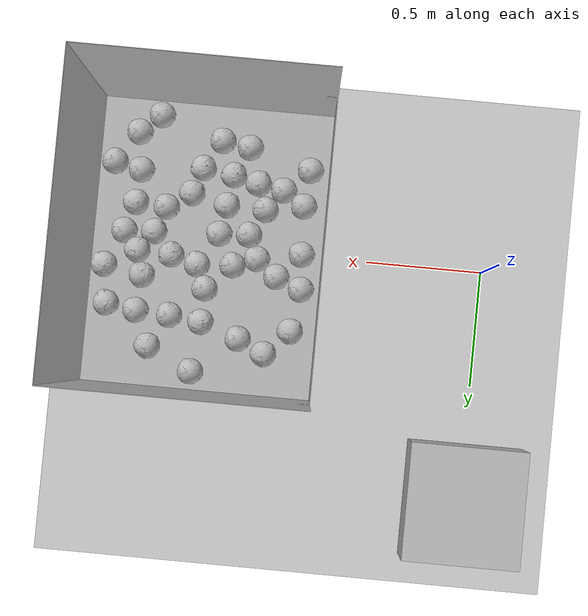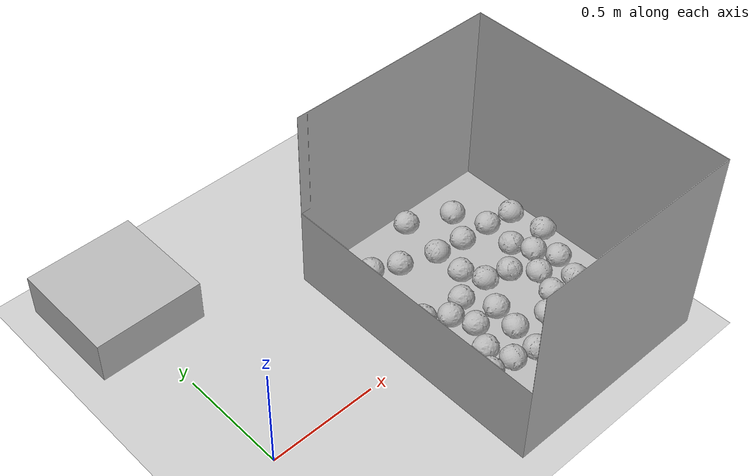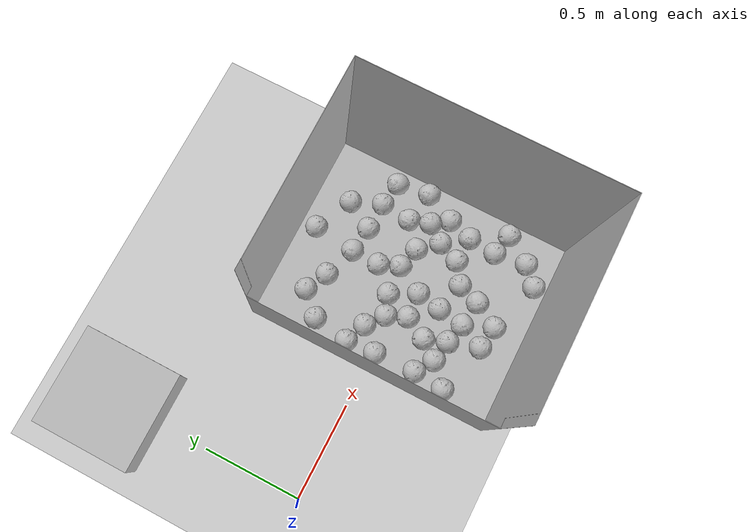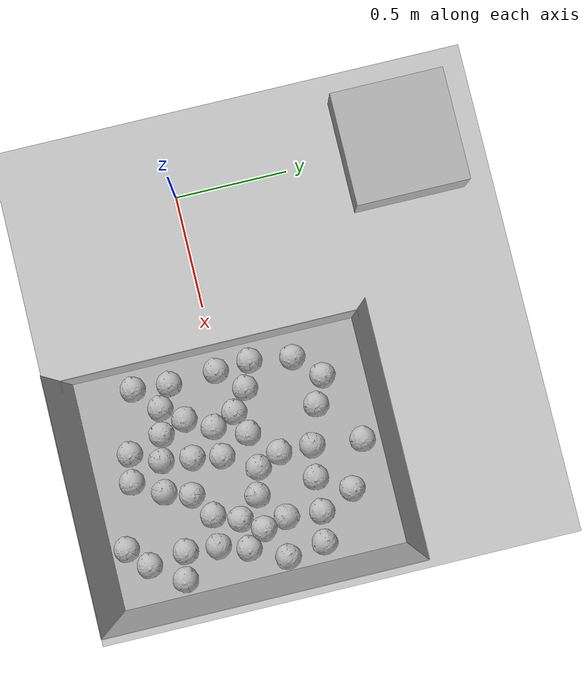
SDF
<sdf version="1.6">
 <world name="default">
  <model name="ground_plane">
   <static>1</static>
   <link name="link">
    <collision name="collision">
     <geometry><plane><normal>0 0 1</normal><size>100 100</size></plane></geometry>
     <surface>
      <contact><collide_bitmask>65535</collide_bitmask></contact>
      <friction><ode><mu>100</mu><mu2>50</mu2></ode></friction>
     </surface>
    </collision>
    <visual name="visual">
     <cast_shadows>0</cast_shadows>
     <geometry><plane><normal>0 0 1</normal><size>100 100</size></plane></geometry>
     <material>
      <script><uri>file://media/materials/scripts/gazebo.material</uri><name>Gazebo/Grey</name></script>
     </material>
    </visual>
   </link>
  </model>
  <light name="sun" type="directional">
   <pose>0 0 10 0 -0 0</pose>
   <diffuse>0.8 0.8 0.8 1</diffuse>
   <specular>0.2 0.2 0.2 1</specular>
   <attenuation>
    <range>1000</range>
    <constant>0.9</constant>
    <linear>0.01</linear>
    <quadratic>0.001</quadratic>
   </attenuation>
   <direction>-0.5 0.1 -0.9</direction>
  </light>
  <model name="mytable">
   <static>1</static>
   <link name="link">
    <inertial>
     <mass>100</mass>
     <inertia><ixx>0.083</ixx><ixy>0</ixy><ixz>0</ixz><iyy>0.083</iyy><iyz>0</iyz><izz>0.083</izz></inertia>
    </inertial>
    <collision name="collision"><geometry><box><size>0.5 0.5 0.2</size></box></geometry></collision>
    <visual name="visual"><geometry><box><size>0.5 0.5 0.2</size></box></geometry></visual>
   </link>
   <pose>0 1 0.1 0 -0 0</pose>
  </model>
  <model name="container">
   <static>1</static>
   <link name="link">
    <inertial>
     <mass>100</mass>
     <inertia><ixx>1</ixx><ixy>0</ixy><ixz>0</ixz><iyy>1</iyy><iyz>0</iyz><izz>1</izz></inertia>
    </inertial>
    <collision name="collision">
     <geometry>
      <mesh>
       <scale>0.001 0.001 0.001</scale>
       <uri>model://big_container_open/big_container_open_meshlab.dae</uri>
      </mesh>
     </geometry>
     <surface>
      <friction><ode><mu>0.6</mu><mu2>0.6</mu2></ode></friction>
      <contact><ode><max_vel>0.1</max_vel><min_depth>0.0001</min_depth></ode></contact>
     </surface>
    </collision>
    <visual name="visual">
     <geometry>
      <mesh>
       <scale>0.001 0.001 0.001</scale>
       <uri>model://big_container_open/big_container_open_meshlab.dae</uri>
      </mesh>
     </geometry>
    </visual>
   </link>
   <pose>1.2 0 0 0 0 -1.57</pose>
  </model>
  <gravity>0 0 -9.8</gravity>
  <magnetic_field>6e-06 2.3e-05 -4.2e-05</magnetic_field>
  <atmosphere type="adiabatic"/>
  <physics name="default_physics" default="0" type="ode">
   <max_step_size>0.001</max_step_size>
   <real_time_factor>1</real_time_factor>
   <real_time_update_rate>1000</real_time_update_rate>
  </physics>
  <scene><ambient>0.4 0.4 0.4 1</ambient><background>0.7 0.7 0.7 1</background><shadows>1</shadows></scene>
  <audio><device>default</device></audio>
  <spherical_coordinates>
   <surface_model>EARTH_WGS84</surface_model>
   <latitude_deg>0</latitude_deg>
   <longitude_deg>0</longitude_deg>
   <elevation>0</elevation>
   <heading_deg>0</heading_deg>
  </spherical_coordinates>
  <model name="cabbage_1">
   <link name="link">
    <inertial>
     <mass>1</mass>
     <inertia><ixx>0.001</ixx><ixy>0</ixy><ixz>0</ixz><iyy>0.001</iyy><iyz>0</iyz><izz>0.001</izz></inertia>
    </inertial>
    <collision name="collision">
     <geometry>
      <mesh><scale>0.001 0.001 0.001</scale><uri>model://cabbage/cabbage_single.dae</uri></mesh>
     </geometry>
     <surface>
      <friction><ode><mu>0.8</mu><mu2>0.8</mu2></ode></friction>
      <contact><ode><max_vel>0.1</max_vel><min_depth>0.0001</min_depth></ode></contact>
     </surface>
    </collision>
    <visual name="visual">
     <geometry>
      <mesh><scale>0.001 0.001 0.001</scale><uri>model://cabbage/cabbage_single.dae</uri></mesh>
     </geometry>
     <material><script><uri>model://cabbage/texture.material</uri><name>CabbageTexture</name></script></material>
    </visual>
   </link>
   <pose>1.56598 -0.039157 0.004035 1.57626 0.009022 -0.760824</pose>
  </model>
  <model name="cabbage_4">
   <link name="link">
    <inertial>
     <mass>1</mass>
     <inertia><ixx>0.001</ixx><ixy>0</ixy><ixz>0</ixz><iyy>0.001</iyy><iyz>0</iyz><izz>0.001</izz></inertia>
    </inertial>
    <collision name="collision">
     <geometry>
      <mesh><scale>0.001 0.001 0.001</scale><uri>model://cabbage/cabbage_single.dae</uri></mesh>
     </geometry>
     <surface>
      <friction><ode><mu>0.8</mu><mu2>0.8</mu2></ode></friction>
      <contact><ode><max_vel>0.1</max_vel><min_depth>0.0001</min_depth></ode></contact>
     </surface>
    </collision>
    <visual name="visual">
     <geometry>
      <mesh><scale>0.001 0.001 0.001</scale><uri>model://cabbage/cabbage_single.dae</uri></mesh>
     </geometry>
     <material><script><uri>model://cabbage/texture.material</uri><name>CabbageTexture</name></script></material>
    </visual>
   </link>
   <pose>1.10936 -0.324463 0.004035 1.57622 0.008772 2.51694</pose>
  </model>
  <model name="cabbage_6">
   <link name="link">
    <inertial>
     <mass>1</mass>
     <inertia><ixx>0.001</ixx><ixy>0</ixy><ixz>0</ixz><iyy>0.001</iyy><iyz>0</iyz><izz>0.001</izz></inertia>
    </inertial>
    <collision name="collision">
     <geometry>
      <mesh><scale>0.001 0.001 0.001</scale><uri>model://cabbage/cabbage_single.dae</uri></mesh>
     </geometry>
     <surface>
      <friction><ode><mu>0.8</mu><mu2>0.8</mu2></ode></friction>
      <contact><ode><max_vel>0.1</max_vel><min_depth>0.0001</min_depth></ode></contact>
     </surface>
    </collision>
    <visual name="visual">
     <geometry>
      <mesh><scale>0.001 0.001 0.001</scale><uri>model://cabbage/cabbage_single.dae</uri></mesh>
     </geometry>
     <material><script><uri>model://cabbage/texture.material</uri><name>CabbageTexture</name></script></material>
    </visual>
   </link>
   <pose>1.43353 -0.045665 0.00405 1.57882 0.008287 0.230389</pose>
  </model>
  <model name="cabbage_7">
   <link name="link">
    <inertial>
     <mass>1</mass>
     <inertia><ixx>0.001</ixx><ixy>0</ixy><ixz>0</ixz><iyy>0.001</iyy><iyz>0</iyz><izz>0.001</izz></inertia>
    </inertial>
    <collision name="collision">
     <geometry>
      <mesh><scale>0.001 0.001 0.001</scale><uri>model://cabbage/cabbage_single.dae</uri></mesh>
     </geometry>
     <surface>
      <friction><ode><mu>0.8</mu><mu2>0.8</mu2></ode></friction>
      <contact><ode><max_vel>0.1</max_vel><min_depth>0.0001</min_depth></ode></contact>
     </surface>
    </collision>
    <visual name="visual">
     <geometry>
      <mesh><scale>0.001 0.001 0.001</scale><uri>model://cabbage/cabbage_single.dae</uri></mesh>
     </geometry>
     <material><script><uri>model://cabbage/texture.material</uri><name>CabbageTexture</name></script></material>
    </visual>
   </link>
   <pose>1.63633 0.114074 0.004033 1.57577 0.00882 1.50983</pose>
  </model>
  <model name="cabbage_8">
   <link name="link">
    <inertial>
     <mass>1</mass>
     <inertia><ixx>0.001</ixx><ixy>0</ixy><ixz>0</ixz><iyy>0.001</iyy><iyz>0</iyz><izz>0.001</izz></inertia>
    </inertial>
    <collision name="collision">
     <geometry>
      <mesh><scale>0.001 0.001 0.001</scale><uri>model://cabbage/cabbage_single.dae</uri></mesh>
     </geometry>
     <surface>
      <friction><ode><mu>0.8</mu><mu2>0.8</mu2></ode></friction>
      <contact><ode><max_vel>0.1</max_vel><min_depth>0.0001</min_depth></ode></contact>
     </surface>
    </collision>
    <visual name="visual">
     <geometry>
      <mesh><scale>0.001 0.001 0.001</scale><uri>model://cabbage/cabbage_single.dae</uri></mesh>
     </geometry>
     <material><script><uri>model://cabbage/texture.material</uri><name>CabbageTexture</name></script></material>
    </visual>
   </link>
   <pose>1.35051 0.044163 0.004036 1.57596 0.008707 3.00387</pose>
  </model>
  <model name="cabbage_9">
   <link name="link">
    <inertial>
     <mass>1</mass>
     <inertia><ixx>0.001</ixx><ixy>0</ixy><ixz>0</ixz><iyy>0.001</iyy><iyz>0</iyz><izz>0.001</izz></inertia>
    </inertial>
    <collision name="collision">
     <geometry>
      <mesh><scale>0.001 0.001 0.001</scale><uri>model://cabbage/cabbage_single.dae</uri></mesh>
     </geometry>
     <surface>
      <friction><ode><mu>0.8</mu><mu2>0.8</mu2></ode></friction>
      <contact><ode><max_vel>0.1</max_vel><min_depth>0.0001</min_depth></ode></contact>
     </surface>
    </collision>
    <visual name="visual">
     <geometry>
      <mesh><scale>0.001 0.001 0.001</scale><uri>model://cabbage/cabbage_single.dae</uri></mesh>
     </geometry>
     <material><script><uri>model://cabbage/texture.material</uri><name>CabbageTexture</name></script></material>
    </visual>
   </link>
   <pose>1.63335 -0.336733 0.004028 1.57637 0.008581 -1.38781</pose>
  </model>
  <model name="cabbage_10">
   <link name="link">
    <inertial>
     <mass>1</mass>
     <inertia><ixx>0.001</ixx><ixy>0</ixy><ixz>0</ixz><iyy>0.001</iyy><iyz>0</iyz><izz>0.001</izz></inertia>
    </inertial>
    <collision name="collision">
     <geometry>
      <mesh><scale>0.001 0.001 0.001</scale><uri>model://cabbage/cabbage_single.dae</uri></mesh>
     </geometry>
     <surface>
      <friction><ode><mu>0.8</mu><mu2>0.8</mu2></ode></friction>
      <contact><ode><max_vel>0.1</max_vel><min_depth>0.0001</min_depth></ode></contact>
     </surface>
    </collision>
    <visual name="visual">
     <geometry>
      <mesh><scale>0.001 0.001 0.001</scale><uri>model://cabbage/cabbage_single.dae</uri></mesh>
     </geometry>
     <material><script><uri>model://cabbage/texture.material</uri><name>CabbageTexture</name></script></material>
    </visual>
   </link>
   <pose>1.24455 -0.343524 0.004036 1.57603 0.008738 2.66101</pose>
  </model>
  <model name="cabbage_11">
   <link name="link">
    <inertial>
     <mass>1</mass>
     <inertia><ixx>0.001</ixx><ixy>0</ixy><ixz>0</ixz><iyy>0.001</iyy><iyz>0</iyz><izz>0.001</izz></inertia>
    </inertial>
    <collision name="collision">
     <geometry>
      <mesh><scale>0.001 0.001 0.001</scale><uri>model://cabbage/cabbage_single.dae</uri></mesh>
     </geometry>
     <surface>
      <friction><ode><mu>0.8</mu><mu2>0.8</mu2></ode></friction>
      <contact><ode><max_vel>0.1</max_vel><min_depth>0.0001</min_depth></ode></contact>
     </surface>
    </collision>
    <visual name="visual">
     <geometry>
      <mesh><scale>0.001 0.001 0.001</scale><uri>model://cabbage/cabbage_single.dae</uri></mesh>
     </geometry>
     <material><script><uri>model://cabbage/texture.material</uri><name>CabbageTexture</name></script></material>
    </visual>
   </link>
   <pose>1.47148 0.144125 0.004074 1.58325 0.006261 -2.62925</pose>
  </model>
  <model name="cabbage_12">
   <link name="link">
    <inertial>
     <mass>1</mass>
     <inertia><ixx>0.001</ixx><ixy>0</ixy><ixz>0</ixz><iyy>0.001</iyy><iyz>0</iyz><izz>0.001</izz></inertia>
    </inertial>
    <collision name="collision">
     <geometry>
      <mesh><scale>0.001 0.001 0.001</scale><uri>model://cabbage/cabbage_single.dae</uri></mesh>
     </geometry>
     <surface>
      <friction><ode><mu>0.8</mu><mu2>0.8</mu2></ode></friction>
      <contact><ode><max_vel>0.1</max_vel><min_depth>0.0001</min_depth></ode></contact>
     </surface>
    </collision>
    <visual name="visual">
     <geometry>
      <mesh><scale>0.001 0.001 0.001</scale><uri>model://cabbage/cabbage_single.dae</uri></mesh>
     </geometry>
     <material><script><uri>model://cabbage/texture.material</uri><name>CabbageTexture</name></script></material>
    </visual>
   </link>
   <pose>1.61246 0.281644 0.003963 1.56744 0.009088 1.15197</pose>
  </model>
  <model name="cabbage_13">
   <link name="link">
    <inertial>
     <mass>1</mass>
     <inertia><ixx>0.001</ixx><ixy>0</ixy><ixz>0</ixz><iyy>0.001</iyy><iyz>0</iyz><izz>0.001</izz></inertia>
    </inertial>
    <collision name="collision">
     <geometry>
      <mesh><scale>0.001 0.001 0.001</scale><uri>model://cabbage/cabbage_single.dae</uri></mesh>
     </geometry>
     <surface>
      <friction><ode><mu>0.8</mu><mu2>0.8</mu2></ode></friction>
      <contact><ode><max_vel>0.1</max_vel><min_depth>0.0001</min_depth></ode></contact>
     </surface>
    </collision>
    <visual name="visual">
     <geometry>
      <mesh><scale>0.001 0.001 0.001</scale><uri>model://cabbage/cabbage_single.dae</uri></mesh>
     </geometry>
     <material><script><uri>model://cabbage/texture.material</uri><name>CabbageTexture</name></script></material>
    </visual>
   </link>
   <pose>1.19484 0.326349 0.004035 1.57594 0.008635 1.83233</pose>
  </model>
  <model name="cabbage_14">
   <link name="link">
    <inertial>
     <mass>1</mass>
     <inertia><ixx>0.001</ixx><ixy>0</ixy><ixz>0</ixz><iyy>0.001</iyy><iyz>0</iyz><izz>0.001</izz></inertia>
    </inertial>
    <collision name="collision">
     <geometry>
      <mesh><scale>0.001 0.001 0.001</scale><uri>model://cabbage/cabbage_single.dae</uri></mesh>
     </geometry>
     <surface>
      <friction><ode><mu>0.8</mu><mu2>0.8</mu2></ode></friction>
      <contact><ode><max_vel>0.1</max_vel><min_depth>0.0001</min_depth></ode></contact>
     </surface>
    </collision>
    <visual name="visual">
     <geometry>
      <mesh><scale>0.001 0.001 0.001</scale><uri>model://cabbage/cabbage_single.dae</uri></mesh>
     </geometry>
     <material><script><uri>model://cabbage/texture.material</uri><name>CabbageTexture</name></script></material>
    </visual>
   </link>
   <pose>1.52296 -0.168109 0.00403 1.57524 0.00862 1.95144</pose>
  </model>
  <model name="cabbage_15">
   <link name="link">
    <inertial>
     <mass>1</mass>
     <inertia><ixx>0.001</ixx><ixy>0</ixy><ixz>0</ixz><iyy>0.001</iyy><iyz>0</iyz><izz>0.001</izz></inertia>
    </inertial>
    <collision name="collision">
     <geometry>
      <mesh><scale>0.001 0.001 0.001</scale><uri>model://cabbage/cabbage_single.dae</uri></mesh>
     </geometry>
     <surface>
      <friction><ode><mu>0.8</mu><mu2>0.8</mu2></ode></friction>
      <contact><ode><max_vel>0.1</max_vel><min_depth>0.0001</min_depth></ode></contact>
     </surface>
    </collision>
    <visual name="visual">
     <geometry>
      <mesh><scale>0.001 0.001 0.001</scale><uri>model://cabbage/cabbage_single.dae</uri></mesh>
     </geometry>
     <material><script><uri>model://cabbage/texture.material</uri><name>CabbageTexture</name></script></material>
    </visual>
   </link>
   <pose>1.28518 -0.225932 0.004035 1.57615 0.008746 -0.102645</pose>
  </model>
  <model name="cabbage_16">
   <link name="link">
    <inertial>
     <mass>1</mass>
     <inertia><ixx>0.001</ixx><ixy>0</ixy><ixz>0</ixz><iyy>0.001</iyy><iyz>0</iyz><izz>0.001</izz></inertia>
    </inertial>
    <collision name="collision">
     <geometry>
      <mesh><scale>0.001 0.001 0.001</scale><uri>model://cabbage/cabbage_single.dae</uri></mesh>
     </geometry>
     <surface>
      <friction><ode><mu>0.8</mu><mu2>0.8</mu2></ode></friction>
      <contact><ode><max_vel>0.1</max_vel><min_depth>0.0001</min_depth></ode></contact>
     </surface>
    </collision>
    <visual name="visual">
     <geometry>
      <mesh><scale>0.001 0.001 0.001</scale><uri>model://cabbage/cabbage_single.dae</uri></mesh>
     </geometry>
     <material><script><uri>model://cabbage/texture.material</uri><name>CabbageTexture</name></script></material>
    </visual>
   </link>
   <pose>1.49351 0.047967 0.028174 1.67434 0.064266 -0.016665</pose>
  </model>
  <model name="cabbage_18">
   <link name="link">
    <inertial>
     <mass>1</mass>
     <inertia><ixx>0.001</ixx><ixy>0</ixy><ixz>0</ixz><iyy>0.001</iyy><iyz>0</iyz><izz>0.001</izz></inertia>
    </inertial>
    <collision name="collision">
     <geometry>
      <mesh><scale>0.001 0.001 0.001</scale><uri>model://cabbage/cabbage_single.dae</uri></mesh>
     </geometry>
     <surface>
      <friction><ode><mu>0.8</mu><mu2>0.8</mu2></ode></friction>
      <contact><ode><max_vel>0.1</max_vel><min_depth>0.0001</min_depth></ode></contact>
     </surface>
    </collision>
    <visual name="visual">
     <geometry>
      <mesh><scale>0.001 0.001 0.001</scale><uri>model://cabbage/cabbage_single.dae</uri></mesh>
     </geometry>
     <material><script><uri>model://cabbage/texture.material</uri><name>CabbageTexture</name></script></material>
    </visual>
   </link>
   <pose>1.19476 0.180337 0.004167 1.55903 -0.009959 -1.32707</pose>
  </model>
  <model name="cabbage_2_clone">
   <link name="link">
    <inertial>
     <mass>1</mass>
     <inertia><ixx>0.001</ixx><ixy>0</ixy><ixz>0</ixz><iyy>0.001</iyy><iyz>0</iyz><izz>0.001</izz></inertia>
    </inertial>
    <collision name="collision">
     <geometry>
      <mesh><scale>0.001 0.001 0.001</scale><uri>model://cabbage/cabbage_single.dae</uri></mesh>
     </geometry>
     <surface>
      <friction><ode><mu>0.8</mu><mu2>0.8</mu2></ode></friction>
      <contact><ode><max_vel>0.1</max_vel><min_depth>0.0001</min_depth></ode></contact>
     </surface>
    </collision>
    <visual name="visual">
     <geometry>
      <mesh><scale>0.001 0.001 0.001</scale><uri>model://cabbage/cabbage_single.dae</uri></mesh>
     </geometry>
     <material><script><uri>model://cabbage/texture.material</uri><name>CabbageTexture</name></script></material>
    </visual>
   </link>
   <pose>1.02372 -0.068914 0.004028 1.57675 0.009024 -1.2972</pose>
  </model>
  <model name="cabbage_2_clone_0">
   <link name="link">
    <inertial>
     <mass>1</mass>
     <inertia><ixx>0.001</ixx><ixy>0</ixy><ixz>0</ixz><iyy>0.001</iyy><iyz>0</iyz><izz>0.001</izz></inertia>
    </inertial>
    <collision name="collision">
     <geometry>
      <mesh><scale>0.001 0.001 0.001</scale><uri>model://cabbage/cabbage_single.dae</uri></mesh>
     </geometry>
     <surface>
      <friction><ode><mu>0.8</mu><mu2>0.8</mu2></ode></friction>
      <contact><ode><max_vel>0.1</max_vel><min_depth>0.0001</min_depth></ode></contact>
     </surface>
    </collision>
    <visual name="visual">
     <geometry>
      <mesh><scale>0.001 0.001 0.001</scale><uri>model://cabbage/cabbage_single.dae</uri></mesh>
     </geometry>
     <material><script><uri>model://cabbage/texture.material</uri><name>CabbageTexture</name></script></material>
    </visual>
   </link>
   <pose>1.3373 0.310488 0.004036 1.57615 0.008677 -1.08155</pose>
  </model>
  <model name="cabbage_3_clone">
   <link name="link">
    <inertial>
     <mass>1</mass>
     <inertia><ixx>0.001</ixx><ixy>0</ixy><ixz>0</ixz><iyy>0.001</iyy><iyz>0</iyz><izz>0.001</izz></inertia>
    </inertial>
    <collision name="collision">
     <geometry>
      <mesh><scale>0.001 0.001 0.001</scale><uri>model://cabbage/cabbage_single.dae</uri></mesh>
     </geometry>
     <surface>
      <friction><ode><mu>0.8</mu><mu2>0.8</mu2></ode></friction>
      <contact><ode><max_vel>0.1</max_vel><min_depth>0.0001</min_depth></ode></contact>
     </surface>
    </collision>
    <visual name="visual">
     <geometry>
      <mesh><scale>0.001 0.001 0.001</scale><uri>model://cabbage/cabbage_single.dae</uri></mesh>
     </geometry>
     <material><script><uri>model://cabbage/texture.material</uri><name>CabbageTexture</name></script></material>
    </visual>
   </link>
   <pose>1.48492 0.302716 0.004033 1.57582 0.008791 -0.703946</pose>
  </model>
  <model name="cabbage_16_clone">
   <link name="link">
    <inertial>
     <mass>1</mass>
     <inertia><ixx>0.001</ixx><ixy>0</ixy><ixz>0</ixz><iyy>0.001</iyy><iyz>0</iyz><izz>0.001</izz></inertia>
    </inertial>
    <collision name="collision">
     <geometry>
      <mesh><scale>0.001 0.001 0.001</scale><uri>model://cabbage/cabbage_single.dae</uri></mesh>
     </geometry>
     <surface>
      <friction><ode><mu>0.8</mu><mu2>0.8</mu2></ode></friction>
      <contact><ode><max_vel>0.1</max_vel><min_depth>0.0001</min_depth></ode></contact>
     </surface>
    </collision>
    <visual name="visual">
     <geometry>
      <mesh><scale>0.001 0.001 0.001</scale><uri>model://cabbage/cabbage_single.dae</uri></mesh>
     </geometry>
     <material><script><uri>model://cabbage/texture.material</uri><name>CabbageTexture</name></script></material>
    </visual>
   </link>
   <pose>1.41844 0.453641 0.004034 1.57595 0.008529 -0.037509</pose>
  </model>
  <model name="cabbage_16_clone_2">
   <link name="link">
    <inertial>
     <mass>1</mass>
     <inertia><ixx>0.001</ixx><ixy>0</ixy><ixz>0</ixz><iyy>0.001</iyy><iyz>0</iyz><izz>0.001</izz></inertia>
    </inertial>
    <collision name="collision">
     <geometry>
      <mesh><scale>0.001 0.001 0.001</scale><uri>model://cabbage/cabbage_single.dae</uri></mesh>
     </geometry>
     <surface>
      <friction><ode><mu>0.8</mu><mu2>0.8</mu2></ode></friction>
      <contact><ode><max_vel>0.1</max_vel><min_depth>0.0001</min_depth></ode></contact>
     </surface>
    </collision>
    <visual name="visual">
     <geometry>
      <mesh><scale>0.001 0.001 0.001</scale><uri>model://cabbage/cabbage_single.dae</uri></mesh>
     </geometry>
     <material><script><uri>model://cabbage/texture.material</uri><name>CabbageTexture</name></script></material>
    </visual>
   </link>
   <pose>0.806286 0.334811 0.004034 1.57595 0.008529 -0.037509</pose>
  </model>
  <model name="cabbage_16_clone_3">
   <link name="link">
    <inertial>
     <mass>1</mass>
     <inertia><ixx>0.001</ixx><ixy>0</ixy><ixz>0</ixz><iyy>0.001</iyy><iyz>0</iyz><izz>0.001</izz></inertia>
    </inertial>
    <collision name="collision">
     <geometry>
      <mesh><scale>0.001 0.001 0.001</scale><uri>model://cabbage/cabbage_single.dae</uri></mesh>
     </geometry>
     <surface>
      <friction><ode><mu>0.8</mu><mu2>0.8</mu2></ode></friction>
      <contact><ode><max_vel>0.1</max_vel><min_depth>0.0001</min_depth></ode></contact>
     </surface>
    </collision>
    <visual name="visual">
     <geometry>
      <mesh><scale>0.001 0.001 0.001</scale><uri>model://cabbage/cabbage_single.dae</uri></mesh>
     </geometry>
     <material><script><uri>model://cabbage/texture.material</uri><name>CabbageTexture</name></script></material>
    </visual>
   </link>
   <pose>0.912989 0.443356 0.004034 1.57595 0.008529 -0.037509</pose>
  </model>
  <model name="cabbage_16_clone_4">
   <link name="link">
    <inertial>
     <mass>1</mass>
     <inertia><ixx>0.001</ixx><ixy>0</ixy><ixz>0</ixz><iyy>0.001</iyy><iyz>0</iyz><izz>0.001</izz></inertia>
    </inertial>
    <collision name="collision">
     <geometry>
      <mesh><scale>0.001 0.001 0.001</scale><uri>model://cabbage/cabbage_single.dae</uri></mesh>
     </geometry>
     <surface>
      <friction><ode><mu>0.8</mu><mu2>0.8</mu2></ode></friction>
      <contact><ode><max_vel>0.1</max_vel><min_depth>0.0001</min_depth></ode></contact>
     </surface>
    </collision>
    <visual name="visual">
     <geometry>
      <mesh><scale>0.001 0.001 0.001</scale><uri>model://cabbage/cabbage_single.dae</uri></mesh>
     </geometry>
     <material><script><uri>model://cabbage/texture.material</uri><name>CabbageTexture</name></script></material>
    </visual>
   </link>
   <pose>1.1296 -0.186848 0.004034 1.57595 0.008529 -0.037509</pose>
  </model>
  <model name="cabbage_2_clone_1">
   <link name="link">
    <inertial>
     <mass>1</mass>
     <inertia><ixx>0.001</ixx><ixy>0</ixy><ixz>0</ixz><iyy>0.001</iyy><iyz>0</iyz><izz>0.001</izz></inertia>
    </inertial>
    <collision name="collision">
     <geometry>
      <mesh><scale>0.001 0.001 0.001</scale><uri>model://cabbage/cabbage_single.dae</uri></mesh>
     </geometry>
     <surface>
      <friction><ode><mu>0.8</mu><mu2>0.8</mu2></ode></friction>
      <contact><ode><max_vel>0.1</max_vel><min_depth>0.0001</min_depth></ode></contact>
     </surface>
    </collision>
    <visual name="visual">
     <geometry>
      <mesh><scale>0.001 0.001 0.001</scale><uri>model://cabbage/cabbage_single.dae</uri></mesh>
     </geometry>
     <material><script><uri>model://cabbage/texture.material</uri><name>CabbageTexture</name></script></material>
    </visual>
   </link>
   <pose>1.08296 0.068779 0.004248 1.55382 -0.018411 -1.38795</pose>
  </model>
  <model name="cabbage_5_clone">
   <link name="link">
    <inertial>
     <mass>1</mass>
     <inertia><ixx>0.001</ixx><ixy>0</ixy><ixz>0</ixz><iyy>0.001</iyy><iyz>0</iyz><izz>0.001</izz></inertia>
    </inertial>
    <collision name="collision">
     <geometry>
      <mesh><scale>0.001 0.001 0.001</scale><uri>model://cabbage/cabbage_single.dae</uri></mesh>
     </geometry>
     <surface>
      <friction><ode><mu>0.8</mu><mu2>0.8</mu2></ode></friction>
      <contact><ode><max_vel>0.1</max_vel><min_depth>0.0001</min_depth></ode></contact>
     </surface>
    </collision>
    <visual name="visual">
     <geometry>
      <mesh><scale>0.001 0.001 0.001</scale><uri>model://cabbage/cabbage_single.dae</uri></mesh>
     </geometry>
     <material><script><uri>model://cabbage/texture.material</uri><name>CabbageTexture</name></script></material>
    </visual>
   </link>
   <pose>0.889319 0.103516 0.004035 1.57608 0.008795 -0.760302</pose>
  </model>
  <model name="cabbage_5_clone_0">
   <link name="link">
    <inertial>
     <mass>1</mass>
     <inertia><ixx>0.001</ixx><ixy>0</ixy><ixz>0</ixz><iyy>0.001</iyy><iyz>0</iyz><izz>0.001</izz></inertia>
    </inertial>
    <collision name="collision">
     <geometry>
      <mesh><scale>0.001 0.001 0.001</scale><uri>model://cabbage/cabbage_single.dae</uri></mesh>
     </geometry>
     <surface>
      <friction><ode><mu>0.8</mu><mu2>0.8</mu2></ode></friction>
      <contact><ode><max_vel>0.1</max_vel><min_depth>0.0001</min_depth></ode></contact>
     </surface>
    </collision>
    <visual name="visual">
     <geometry>
      <mesh><scale>0.001 0.001 0.001</scale><uri>model://cabbage/cabbage_single.dae</uri></mesh>
     </geometry>
     <material><script><uri>model://cabbage/texture.material</uri><name>CabbageTexture</name></script></material>
    </visual>
   </link>
   <pose>1.15311 -0.060754 0.004032 1.576 0.008538 -0.611413</pose>
  </model>
  <model name="cabbage_2_clone_4">
   <link name="link">
    <inertial>
     <mass>1</mass>
     <inertia><ixx>0.001</ixx><ixy>0</ixy><ixz>0</ixz><iyy>0.001</iyy><iyz>0</iyz><izz>0.001</izz></inertia>
    </inertial>
    <collision name="collision">
     <geometry>
      <mesh><scale>0.001 0.001 0.001</scale><uri>model://cabbage/cabbage_single.dae</uri></mesh>
     </geometry>
     <surface>
      <friction><ode><mu>0.8</mu><mu2>0.8</mu2></ode></friction>
      <contact><ode><max_vel>0.1</max_vel><min_depth>0.0001</min_depth></ode></contact>
     </surface>
    </collision>
    <visual name="visual">
     <geometry>
      <mesh><scale>0.001 0.001 0.001</scale><uri>model://cabbage/cabbage_single.dae</uri></mesh>
     </geometry>
     <material><script><uri>model://cabbage/texture.material</uri><name>CabbageTexture</name></script></material>
    </visual>
   </link>
   <pose>1.03119 0.386094 0.004035 1.57609 0.008472 -1.07963</pose>
  </model>
  <model name="cabbage_2_clone_5">
   <link name="link">
    <inertial>
     <mass>1</mass>
     <inertia><ixx>0.001</ixx><ixy>0</ixy><ixz>0</ixz><iyy>0.001</iyy><iyz>0</iyz><izz>0.001</izz></inertia>
    </inertial>
    <collision name="collision">
     <geometry>
      <mesh><scale>0.001 0.001 0.001</scale><uri>model://cabbage/cabbage_single.dae</uri></mesh>
     </geometry>
     <surface>
      <friction><ode><mu>0.8</mu><mu2>0.8</mu2></ode></friction>
      <contact><ode><max_vel>0.1</max_vel><min_depth>0.0001</min_depth></ode></contact>
     </surface>
    </collision>
    <visual name="visual">
     <geometry>
      <mesh><scale>0.001 0.001 0.001</scale><uri>model://cabbage/cabbage_single.dae</uri></mesh>
     </geometry>
     <material><script><uri>model://cabbage/texture.material</uri><name>CabbageTexture</name></script></material>
    </visual>
   </link>
   <pose>1.22396 0.545741 0.004035 1.57609 0.008472 -1.07963</pose>
  </model>
  <model name="cabbage_2_clone_7">
   <link name="link">
    <inertial>
     <mass>1</mass>
     <inertia><ixx>0.001</ixx><ixy>0</ixy><ixz>0</ixz><iyy>0.001</iyy><iyz>0</iyz><izz>0.001</izz></inertia>
    </inertial>
    <collision name="collision">
     <geometry>
      <mesh><scale>0.001 0.001 0.001</scale><uri>model://cabbage/cabbage_single.dae</uri></mesh>
     </geometry>
     <surface>
      <friction><ode><mu>0.8</mu><mu2>0.8</mu2></ode></friction>
      <contact><ode><max_vel>0.1</max_vel><min_depth>0.0001</min_depth></ode></contact>
     </surface>
    </collision>
    <visual name="visual">
     <geometry>
      <mesh><scale>0.001 0.001 0.001</scale><uri>model://cabbage/cabbage_single.dae</uri></mesh>
     </geometry>
     <material><script><uri>model://cabbage/texture.material</uri><name>CabbageTexture</name></script></material>
    </visual>
   </link>
   <pose>0.962371 -0.184607 0.004033 1.57567 0.008696 -1.55216</pose>
  </model>
  <model name="cabbage_2_clone_9">
   <link name="link">
    <inertial>
     <mass>1</mass>
     <inertia><ixx>0.001</ixx><ixy>0</ixy><ixz>0</ixz><iyy>0.001</iyy><iyz>0</iyz><izz>0.001</izz></inertia>
    </inertial>
    <collision name="collision">
     <geometry>
      <mesh><scale>0.001 0.001 0.001</scale><uri>model://cabbage/cabbage_single.dae</uri></mesh>
     </geometry>
     <surface>
      <friction><ode><mu>0.8</mu><mu2>0.8</mu2></ode></friction>
      <contact><ode><max_vel>0.1</max_vel><min_depth>0.0001</min_depth></ode></contact>
     </surface>
    </collision>
    <visual name="visual">
     <geometry>
      <mesh><scale>0.001 0.001 0.001</scale><uri>model://cabbage/cabbage_single.dae</uri></mesh>
     </geometry>
     <material><script><uri>model://cabbage/texture.material</uri><name>CabbageTexture</name></script></material>
    </visual>
   </link>
   <pose>0.979919 0.03267 0.004168 1.56193 -0.010284 -0.725715</pose>
  </model>
  <model name="cabbage_2_clone_10">
   <link name="link">
    <inertial>
     <mass>1</mass>
     <inertia><ixx>0.001</ixx><ixy>0</ixy><ixz>0</ixz><iyy>0.001</iyy><iyz>0</iyz><izz>0.001</izz></inertia>
    </inertial>
    <collision name="collision">
     <geometry>
      <mesh><scale>0.001 0.001 0.001</scale><uri>model://cabbage/cabbage_single.dae</uri></mesh>
     </geometry>
     <surface>
      <friction><ode><mu>0.8</mu><mu2>0.8</mu2></ode></friction>
      <contact><ode><max_vel>0.1</max_vel><min_depth>0.0001</min_depth></ode></contact>
     </surface>
    </collision>
    <visual name="visual">
     <geometry>
      <mesh><scale>0.001 0.001 0.001</scale><uri>model://cabbage/cabbage_single.dae</uri></mesh>
     </geometry>
     <material><script><uri>model://cabbage/texture.material</uri><name>CabbageTexture</name></script></material>
    </visual>
   </link>
   <pose>1.17372 -0.466472 0.004035 1.57593 0.008541 -1.07881</pose>
  </model>
  <model name="cabbage_1_clone">
   <link name="link">
    <inertial>
     <mass>1</mass>
     <inertia><ixx>0.001</ixx><ixy>0</ixy><ixz>0</ixz><iyy>0.001</iyy><iyz>0</iyz><izz>0.001</izz></inertia>
    </inertial>
    <collision name="collision">
     <geometry>
      <mesh><scale>0.001 0.001 0.001</scale><uri>model://cabbage/cabbage_single.dae</uri></mesh>
     </geometry>
     <surface>
      <friction><ode><mu>0.8</mu><mu2>0.8</mu2></ode></friction>
      <contact><ode><max_vel>0.1</max_vel><min_depth>0.0001</min_depth></ode></contact>
     </surface>
    </collision>
    <visual name="visual">
     <geometry>
      <mesh><scale>0.001 0.001 0.001</scale><uri>model://cabbage/cabbage_single.dae</uri></mesh>
     </geometry>
     <material><script><uri>model://cabbage/texture.material</uri><name>CabbageTexture</name></script></material>
    </visual>
   </link>
   <pose>1.53744 -0.472714 0.003991 1.57146 0.008424 -0.723945</pose>
  </model>
  <model name="cabbage_1_clone_0">
   <link name="link">
    <inertial>
     <mass>1</mass>
     <inertia><ixx>0.001</ixx><ixy>0</ixy><ixz>0</ixz><iyy>0.001</iyy><iyz>0</iyz><izz>0.001</izz></inertia>
    </inertial>
    <collision name="collision">
     <geometry>
      <mesh><scale>0.001 0.001 0.001</scale><uri>model://cabbage/cabbage_single.dae</uri></mesh>
     </geometry>
     <surface>
      <friction><ode><mu>0.8</mu><mu2>0.8</mu2></ode></friction>
      <contact><ode><max_vel>0.1</max_vel><min_depth>0.0001</min_depth></ode></contact>
     </surface>
    </collision>
    <visual name="visual">
     <geometry>
      <mesh><scale>0.001 0.001 0.001</scale><uri>model://cabbage/cabbage_single.dae</uri></mesh>
     </geometry>
     <material><script><uri>model://cabbage/texture.material</uri><name>CabbageTexture</name></script></material>
    </visual>
   </link>
   <pose>1.05208 -0.447185 0.004034 1.576 0.008454 -0.688551</pose>
  </model>
  <model name="cabbage_1_clone_1">
   <link name="link">
    <inertial>
     <mass>1</mass>
     <inertia><ixx>0.001</ixx><ixy>0</ixy><ixz>0</ixz><iyy>0.001</iyy><iyz>0</iyz><izz>0.001</izz></inertia>
    </inertial>
    <collision name="collision">
     <geometry>
      <mesh><scale>0.001 0.001 0.001</scale><uri>model://cabbage/cabbage_single.dae</uri></mesh>
     </geometry>
     <surface>
      <friction><ode><mu>0.8</mu><mu2>0.8</mu2></ode></friction>
      <contact><ode><max_vel>0.1</max_vel><min_depth>0.0001</min_depth></ode></contact>
     </surface>
    </collision>
    <visual name="visual">
     <geometry>
      <mesh><scale>0.001 0.001 0.001</scale><uri>model://cabbage/cabbage_single.dae</uri></mesh>
     </geometry>
     <material><script><uri>model://cabbage/texture.material</uri><name>CabbageTexture</name></script></material>
    </visual>
   </link>
   <pose>0.787926 -0.002784 0.003991 1.57146 0.008424 -0.723945</pose>
  </model>
  <model name="cabbage_1_clone_2">
   <link name="link">
    <inertial>
     <mass>1</mass>
     <inertia><ixx>0.001</ixx><ixy>0</ixy><ixz>0</ixz><iyy>0.001</iyy><iyz>0</iyz><izz>0.001</izz></inertia>
    </inertial>
    <collision name="collision">
     <geometry>
      <mesh><scale>0.001 0.001 0.001</scale><uri>model://cabbage/cabbage_single.dae</uri></mesh>
     </geometry>
     <surface>
      <friction><ode><mu>0.8</mu><mu2>0.8</mu2></ode></friction>
      <contact><ode><max_vel>0.1</max_vel><min_depth>0.0001</min_depth></ode></contact>
     </surface>
    </collision>
    <visual name="visual">
     <geometry>
      <mesh><scale>0.001 0.001 0.001</scale><uri>model://cabbage/cabbage_single.dae</uri></mesh>
     </geometry>
     <material><script><uri>model://cabbage/texture.material</uri><name>CabbageTexture</name></script></material>
    </visual>
   </link>
   <pose>0.778191 0.14877 0.003991 1.57146 0.008424 -0.723945</pose>
  </model>
  <model name="cabbage_1_clone_3">
   <link name="link">
    <inertial>
     <mass>1</mass>
     <inertia><ixx>0.001</ixx><ixy>0</ixy><ixz>0</ixz><iyy>0.001</iyy><iyz>0</iyz><izz>0.001</izz></inertia>
    </inertial>
    <collision name="collision">
     <geometry>
      <mesh><scale>0.001 0.001 0.001</scale><uri>model://cabbage/cabbage_single.dae</uri></mesh>
     </geometry>
     <surface>
      <friction><ode><mu>0.8</mu><mu2>0.8</mu2></ode></friction>
      <contact><ode><max_vel>0.1</max_vel><min_depth>0.0001</min_depth></ode></contact>
     </surface>
    </collision>
    <visual name="visual">
     <geometry>
      <mesh><scale>0.001 0.001 0.001</scale><uri>model://cabbage/cabbage_single.dae</uri></mesh>
     </geometry>
     <material><script><uri>model://cabbage/texture.material</uri><name>CabbageTexture</name></script></material>
    </visual>
   </link>
   <pose>0.79715 -0.213485 0.004036 1.57604 0.008539 -0.83035</pose>
  </model>
  <model name="cabbage_1_clone_5">
   <link name="link">
    <inertial>
     <mass>1</mass>
     <inertia><ixx>0.001</ixx><ixy>0</ixy><ixz>0</ixz><iyy>0.001</iyy><iyz>0</iyz><izz>0.001</izz></inertia>
    </inertial>
    <collision name="collision">
     <geometry>
      <mesh><scale>0.001 0.001 0.001</scale><uri>model://cabbage/cabbage_single.dae</uri></mesh>
     </geometry>
     <surface>
      <friction><ode><mu>0.8</mu><mu2>0.8</mu2></ode></friction>
      <contact><ode><max_vel>0.1</max_vel><min_depth>0.0001</min_depth></ode></contact>
     </surface>
    </collision>
    <visual name="visual">
     <geometry>
      <mesh><scale>0.001 0.001 0.001</scale><uri>model://cabbage/cabbage_single.dae</uri></mesh>
     </geometry>
     <material><script><uri>model://cabbage/texture.material</uri><name>CabbageTexture</name></script></material>
    </visual>
   </link>
   <pose>1.00007 -0.293538 0.004035 1.57581 0.008716 0.252989</pose>
  </model>
  <model name="cabbage_1_clone_6">
   <link name="link">
    <inertial>
     <mass>1</mass>
     <inertia><ixx>0.001</ixx><ixy>0</ixy><ixz>0</ixz><iyy>0.001</iyy><iyz>0</iyz><izz>0.001</izz></inertia>
    </inertial>
    <collision name="collision">
     <geometry>
      <mesh><scale>0.001 0.001 0.001</scale><uri>model://cabbage/cabbage_single.dae</uri></mesh>
     </geometry>
     <surface>
      <friction><ode><mu>0.8</mu><mu2>0.8</mu2></ode></friction>
      <contact><ode><max_vel>0.1</max_vel><min_depth>0.0001</min_depth></ode></contact>
     </surface>
    </collision>
    <visual name="visual">
     <geometry>
      <mesh><scale>0.001 0.001 0.001</scale><uri>model://cabbage/cabbage_single.dae</uri></mesh>
     </geometry>
     <material><script><uri>model://cabbage/texture.material</uri><name>CabbageTexture</name></script></material>
    </visual>
   </link>
   <pose>0.890507 -0.274367 0.004031 1.57647 0.007982 -0.770914</pose>
  </model>
  <model name="cabbage_1_clone_8">
   <link name="link">
    <inertial>
     <mass>1</mass>
     <inertia><ixx>0.001</ixx><ixy>0</ixy><ixz>0</ixz><iyy>0.001</iyy><iyz>0</iyz><izz>0.001</izz></inertia>
    </inertial>
    <collision name="collision">
     <geometry>
      <mesh><scale>0.001 0.001 0.001</scale><uri>model://cabbage/cabbage_single.dae</uri></mesh>
     </geometry>
     <surface>
      <friction><ode><mu>0.8</mu><mu2>0.8</mu2></ode></friction>
      <contact><ode><max_vel>0.1</max_vel><min_depth>0.0001</min_depth></ode></contact>
     </surface>
    </collision>
    <visual name="visual">
     <geometry>
      <mesh><scale>0.001 0.001 0.001</scale><uri>model://cabbage/cabbage_single.dae</uri></mesh>
     </geometry>
     <material><script><uri>model://cabbage/texture.material</uri><name>CabbageTexture</name></script></material>
    </visual>
   </link>
   <pose>0.782359 -0.371677 0.003986 1.5718 0.007816 -0.724261</pose>
  </model>
  <model name="cabbage_1_clone_12">
   <link name="link">
    <inertial>
     <mass>1</mass>
     <inertia><ixx>0.001</ixx><ixy>0</ixy><ixz>0</ixz><iyy>0.001</iyy><iyz>0</iyz><izz>0.001</izz></inertia>
    </inertial>
    <collision name="collision">
     <geometry>
      <mesh><scale>0.001 0.001 0.001</scale><uri>model://cabbage/cabbage_single.dae</uri></mesh>
     </geometry>
     <surface>
      <friction><ode><mu>0.8</mu><mu2>0.8</mu2></ode></friction>
      <contact><ode><max_vel>0.1</max_vel><min_depth>0.0001</min_depth></ode></contact>
     </surface>
    </collision>
    <visual name="visual">
     <geometry>
      <mesh><scale>0.001 0.001 0.001</scale><uri>model://cabbage/cabbage_single.dae</uri></mesh>
     </geometry>
     <material><script><uri>model://cabbage/texture.material</uri><name>CabbageTexture</name></script></material>
    </visual>
   </link>
   <pose>1.51543 -0.308863 0.003986 1.57179 0.007803 -0.724455</pose>
  </model>
  <model name="cabbage_1_clone_13">
   <link name="link">
    <inertial>
     <mass>1</mass>
     <inertia><ixx>0.001</ixx><ixy>0</ixy><ixz>0</ixz><iyy>0.001</iyy><iyz>0</iyz><izz>0.001</izz></inertia>
    </inertial>
    <collision name="collision">
     <geometry>
      <mesh><scale>0.001 0.001 0.001</scale><uri>model://cabbage/cabbage_single.dae</uri></mesh>
     </geometry>
     <surface>
      <friction><ode><mu>0.8</mu><mu2>0.8</mu2></ode></friction>
      <contact><ode><max_vel>0.1</max_vel><min_depth>0.0001</min_depth></ode></contact>
     </surface>
    </collision>
    <visual name="visual">
     <geometry>
      <mesh><scale>0.001 0.001 0.001</scale><uri>model://cabbage/cabbage_single.dae</uri></mesh>
     </geometry>
     <material><script><uri>model://cabbage/texture.material</uri><name>CabbageTexture</name></script></material>
    </visual>
   </link>
   <pose>1.44721 -0.553824 0.003986 1.57179 0.007784 -0.724522</pose>
  </model>
  <model name="cabbage_1_clone_14">
   <link name="link">
    <inertial>
     <mass>1</mass>
     <inertia><ixx>0.001</ixx><ixy>0</ixy><ixz>0</ixz><iyy>0.001</iyy><iyz>0</iyz><izz>0.001</izz></inertia>
    </inertial>
    <collision name="collision">
     <geometry>
      <mesh><scale>0.001 0.001 0.001</scale><uri>model://cabbage/cabbage_single.dae</uri></mesh>
     </geometry>
     <surface>
      <friction><ode><mu>0.8</mu><mu2>0.8</mu2></ode></friction>
      <contact><ode><max_vel>0.1</max_vel><min_depth>0.0001</min_depth></ode></contact>
     </surface>
    </collision>
    <visual name="visual">
     <geometry>
      <mesh><scale>0.001 0.001 0.001</scale><uri>model://cabbage/cabbage_single.dae</uri></mesh>
     </geometry>
     <material><script><uri>model://cabbage/texture.material</uri><name>CabbageTexture</name></script></material>
    </visual>
   </link>
   <pose>1.23264 0.080057 0.004381 1.61423 0.00507 1.08684</pose>
  </model>
  <model name="cabbage_2_clone_11">
   <link name="link">
    <inertial>
     <mass>1</mass>
     <inertia><ixx>0.001</ixx><ixy>0</ixy><ixz>0</ixz><iyy>0.001</iyy><iyz>0</iyz><izz>0.001</izz></inertia>
    </inertial>
    <collision name="collision">
     <geometry>
      <mesh><scale>0.001 0.001 0.001</scale><uri>model://cabbage/cabbage_single.dae</uri></mesh>
     </geometry>
     <surface>
      <friction><ode><mu>0.8</mu><mu2>0.8</mu2></ode></friction>
      <contact><ode><max_vel>0.1</max_vel><min_depth>0.0001</min_depth></ode></contact>
     </surface>
    </collision>
    <visual name="visual">
     <geometry>
      <mesh><scale>0.001 0.001 0.001</scale><uri>model://cabbage/cabbage_single.dae</uri></mesh>
     </geometry>
     <material><script><uri>model://cabbage/texture.material</uri><name>CabbageTexture</name></script></material>
    </visual>
   </link>
   <pose>1.39199 -0.157988 0.004035 1.57609 0.008472 -1.07963</pose>
  </model>
 </world>
</sdf>
